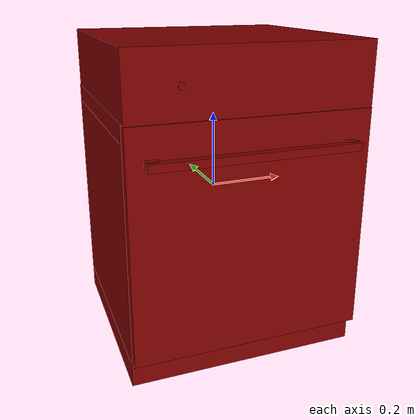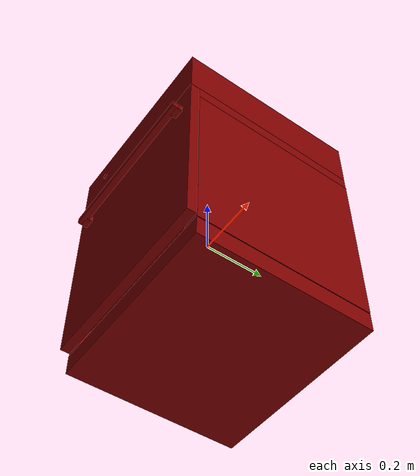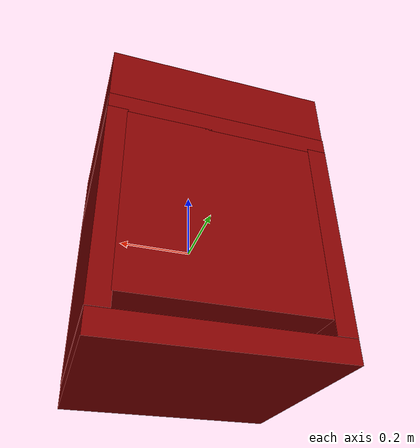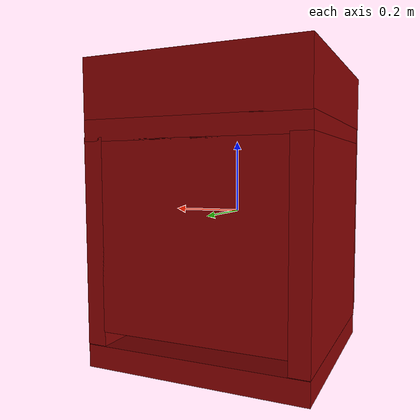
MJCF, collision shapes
<mujoco model="model">
  <compiler angle="radian"/>
  <asset>
    <mesh file="visuals/Body001.obj" name="Body001_vis"/>
    <mesh file="visuals/Button001.obj" name="Button001_vis"/>
    <mesh file="visuals/Container001.obj" name="Container001_vis"/>
    <mesh file="visuals/Container002.obj" name="Container002_vis"/>
    <mesh file="visuals/Door001.obj" name="Door001_vis"/>
    <mesh file="visuals/Handle001.obj" name="Handle001_vis"/>
    <texture file="visuals/T_BC001.png" name="Body001_material" type="2d"/>
    <material name="Body001_material" rgba="1 1 1 1.0" texture="Body001_material" shininess="0.2512328028678894" specular="0.3103448502657381"/>
    <texture file="visuals/T_BC001.png" name="Button001_material" type="2d"/>
    <material name="Button001_material" rgba="1 1 1 1.0" texture="Button001_material" shininess="0.2512328028678894" specular="0.3103448502657381"/>
    <texture file="visuals/T_BC001.png" name="Container001_material" type="2d"/>
    <material name="Container001_material" rgba="1 1 1 1.0" texture="Container001_material" shininess="0.2512328028678894" specular="0.3103448502657381"/>
    <texture file="visuals/T_BC001.png" name="Container002_material" type="2d"/>
    <material name="Container002_material" rgba="1 1 1 1.0" texture="Container002_material" shininess="0.2512328028678894" specular="0.3103448502657381"/>
    <texture file="visuals/T_BC001.png" name="Door001_material" type="2d"/>
    <material name="Door001_material" rgba="1 1 1 1.0" texture="Door001_material" shininess="0.2512328028678894" specular="0.3103448502657381"/>
    <texture file="visuals/T_BC001.png" name="Handle001_material" type="2d"/>
    <material name="Handle001_material" rgba="1 1 1 1.0" texture="Handle001_material" shininess="0.2512328028678894" specular="0.3103448502657381"/>
  </asset>
  <default>
    <default class="visual">
      <geom conaffinity="0" contype="0" group="1" type="mesh"/>
    </default>
    <default class="collision">
      <geom group="0" rgba="0.5 0 0 0.5"/>
    </default>
    <default class="spawn">
      <geom group="0" rgba="1 1 1 0.5" contype="0" conaffinity="0"/>
      <site group="0" rgba="1 1 1 0.5"/>
    </default>
    <default class="region">
      <geom group="1" conaffinity="0" contype="0" rgba="0 1 0 0"/>
    </default>
  </default>
  <worldbody>
    <body>
      <body name="object">
        <geom mesh="Body001_vis" type="mesh" solimp="0.998 0.998 0.001" solref="0.001 1" density="100" friction="0.95 0.3 0.1" class="visual" material="Body001_material"/>
        <geom class="collision" type="box" pos="-0.00019243206770624965 0.016982844099402428 0.32550257444381714" size="0.3003498911857605 0.2901493310928345 0.0797363743185997" quat="1.0 0.0 0.0 0.0"/>
        <geom class="collision" type="box" pos="-0.0010491516441106796 0.03132002800703049 0.21973945200443268" size="0.3012066185474396 0.27581214904785156 0.027695506811141968" quat="1.0 0.0 0.0 0.0"/>
        <geom class="collision" type="box" pos="-0.2759091258049011 0.03132002800703049 -0.07035084813833237" size="0.026634175330400467 0.27581214904785156 0.27288806438446045" quat="1.0 0.0 0.0 0.0"/>
        <geom class="collision" type="box" pos="0.27454161643981934 0.03132002800703049 -0.07035084813833237" size="0.026558926329016685 0.27581214904785156 0.27288806438446045" quat="1.0 0.0 0.0 0.0"/>
        <geom class="collision" type="box" pos="-0.0010491516441106796 0.03064667247235775 -0.3750441372394562" size="0.3012066185474396 0.27648550271987915 0.03056887909770012" quat="1.0 0.0 0.0 0.0"/>
        <geom class="collision" type="box" pos="-0.0008824091055430472 0.2610296308994293 -0.05458954721689224" size="0.25167155265808105 0.04610254615545273 0.2503986656665802" quat="1.0 0.0 0.0 0.0"/>
        <body name="Button001">
          <joint axis="0.0 1.0 0.0" pos="-0.1748950481414795 -0.2760624885559082 0.3234867453575134" limited="true" name="Button001_joint" range="0.0 0.001" type="slide" damping="1" frictionloss="1" armature=".01" stiffness="0.05"/>
          <geom mesh="Button001_vis" type="mesh" solimp="0.998 0.998 0.001" solref="0.001 1" density="100" friction="0.95 0.3 0.1" class="visual" material="Button001_material"/>
          <geom class="collision" type="cylinder" pos="-0.17487752437591553 -0.2789904773235321 0.32355576753616333" size="0.008274339139461517 0.0011925656581297517" quat="0.7071067094802856 0.7071068286895752 0.0 0.0"/>
        </body>
        <body name="Container001">
          <joint axis="0.0 -1.0 0.0" pos="-0.004649088252335787 -0.015186631120741367 0.011907398700714111" limited="true" name="Container001_joint" range="0.0 0.2" type="slide" damping="1" frictionloss="1" armature=".01" stiffness="0.05"/>
          <geom mesh="Container001_vis" type="mesh" solimp="0.998 0.998 0.001" solref="0.001 1" density="100" friction="0.95 0.3 0.1" class="visual" material="Container001_material"/>
          <geom class="collision" type="box" pos="0.23423707485198975 -0.01874145120382309 0.04754294455051422" size="0.008986547589302063 0.2091057449579239 0.09260738641023636" quat="1.0 0.0 0.0 0.0"/>
          <geom class="collision" type="box" pos="-0.23742379248142242 -0.01874145120382309 0.04754294455051422" size="0.008986547589302063 0.2091057449579239 0.09260738641023636" quat="1.0 0.0 0.0 0.0"/>
          <geom class="collision" type="box" pos="0.00046661333180963993 -0.22009345889091492 0.04450361430644989" size="0.23230789601802826 0.005840248893946409 0.08956805616617203" quat="1.0 0.0 0.0 0.0"/>
          <geom class="collision" type="box" pos="0.00046661333180963993 0.18125784397125244 0.04450361430644989" size="0.23230789601802826 0.008405267260968685 0.08956805616617203" quat="1.0 0.0 0.0 0.0"/>
          <geom class="collision" type="box" pos="0.00046661333180963993 -0.014769263565540314 -0.040889255702495575" size="0.23230789601802826 0.20097476243972778 0.004175184294581413" quat="1.0 0.0 0.0 0.0"/>
        </body>
        <body name="Container002">
          <joint axis="0.0 -1.0 0.0" pos="-0.004648935981094837 -0.015186886303126812 -0.2153024673461914" limited="true" name="Container002_joint" range="0.0 0.06" type="slide" damping="1" frictionloss="1" armature=".01" stiffness="0.05"/>
          <geom mesh="Container002_vis" type="mesh" solimp="0.998 0.998 0.001" solref="0.001 1" density="100" friction="0.95 0.3 0.1" class="visual" material="Container002_material"/>
          <geom class="collision" type="box" pos="0.2329053282737732 -0.013362483121454716 -0.18006259202957153" size="0.008986547589302063 0.20372678339481354 0.09260738641023636" quat="1.0 0.0 0.0 0.0"/>
          <geom class="collision" type="box" pos="-0.23742379248142242 -0.01641824096441269 -0.18006259202957153" size="0.008986547589302063 0.2067825347185135 0.09260738641023636" quat="1.0 0.0 0.0 0.0"/>
          <geom class="collision" type="box" pos="0.00046661333180963993 -0.22009345889091492 -0.18310192227363586" size="0.23230789601802826 0.005840248893946409 0.08956805616617203" quat="1.0 0.0 0.0 0.0"/>
          <geom class="collision" type="box" pos="0.00046661333180963993 0.18125784397125244 -0.18310192227363586" size="0.23230789601802826 0.008405267260968685 0.08956805616617203" quat="1.0 0.0 0.0 0.0"/>
          <geom class="collision" type="box" pos="0.00046661333180963993 -0.014769263565540314 -0.26849478483200073" size="0.23230789601802826 0.20097476243972778 0.004175184294581413" quat="1.0 0.0 0.0 0.0"/>
        </body>
        <body name="Door001">
          <joint axis="1.0 0.0 0.0" pos="-0.0840739905834198 -0.2446351796388626 -0.3351113796234131" limited="true" name="Door001_joint" range="0.0 0.4363323129985824" type="hinge" damping="1" frictionloss="1" armature=".01" stiffness="1.2" springref="-2"/>
          <geom mesh="Door001_vis" type="mesh" solimp="0.998 0.998 0.001" solref="0.001 1" density="100" friction="0.95 0.3 0.1" class="visual" material="Door001_material"/>
          <geom class="collision" type="box" pos="8.846560376696289e-05 -0.2599567472934723 -0.0450962632894516" size="0.3002263605594635 0.014394821599125862 0.2902294099330902" quat="1.0 0.0 0.0 0.0"/>
          <body name="Handle001">
            <geom mesh="Handle001_vis" type="mesh" solimp="0.998 0.998 0.001" solref="0.001 1" density="100" friction="0.95 0.3 0.1" class="visual" material="Handle001_material"/>
            <geom class="collision" type="box" pos="-5.807557317893952e-05 -0.2964182198047638 0.16038239002227783" size="0.260323166847229 0.01023526769131422 0.010024555027484894" quat="1.0 0.0 0.0 0.0"/>
            <geom class="collision" type="box" pos="-0.24483169615268707 -0.28366267681121826 0.16053617000579834" size="0.015549609437584877 0.01023526769131422 0.010631179437041283" quat="1.0 0.0 0.0 0.0"/>
            <geom class="collision" type="box" pos="0.24433715641498566 -0.28366267681121826 0.16053617000579834" size="0.015549609437584877 0.01023526769131422 0.010631179437041283" quat="1.0 0.0 0.0 0.0"/>
          </body>
        </body>
        <geom class="region" name="reg_main" type="box" pos="2.8172507882118225e-08 0.01524527370929718 1.4901161193847656e-07" size="0.30000653862953186 0.2918243408203125 0.40499991178512573"/>
        <geom class="region" name="reg_int" type="box" pos="-0.0015629976987838745 -0.006307095289230347 -0.05976901948451996" size="0.24877987802028656 0.21984048187732697 0.237625852227211"/>
      </body>
    </body>
  </worldbody>
  <actuator>
    <motor name="Button001_joint_actuator" joint="Button001_joint" gear="0.5"/>
    <motor name="Container001_joint_actuator" joint="Container001_joint" gear="10"/>
    <motor name="Container002_joint_actuator" joint="Container002_joint" gear="10"/>
    <motor name="Door001_joint_actuator" joint="Door001_joint" gear="50"/>
  </actuator>
</mujoco>
